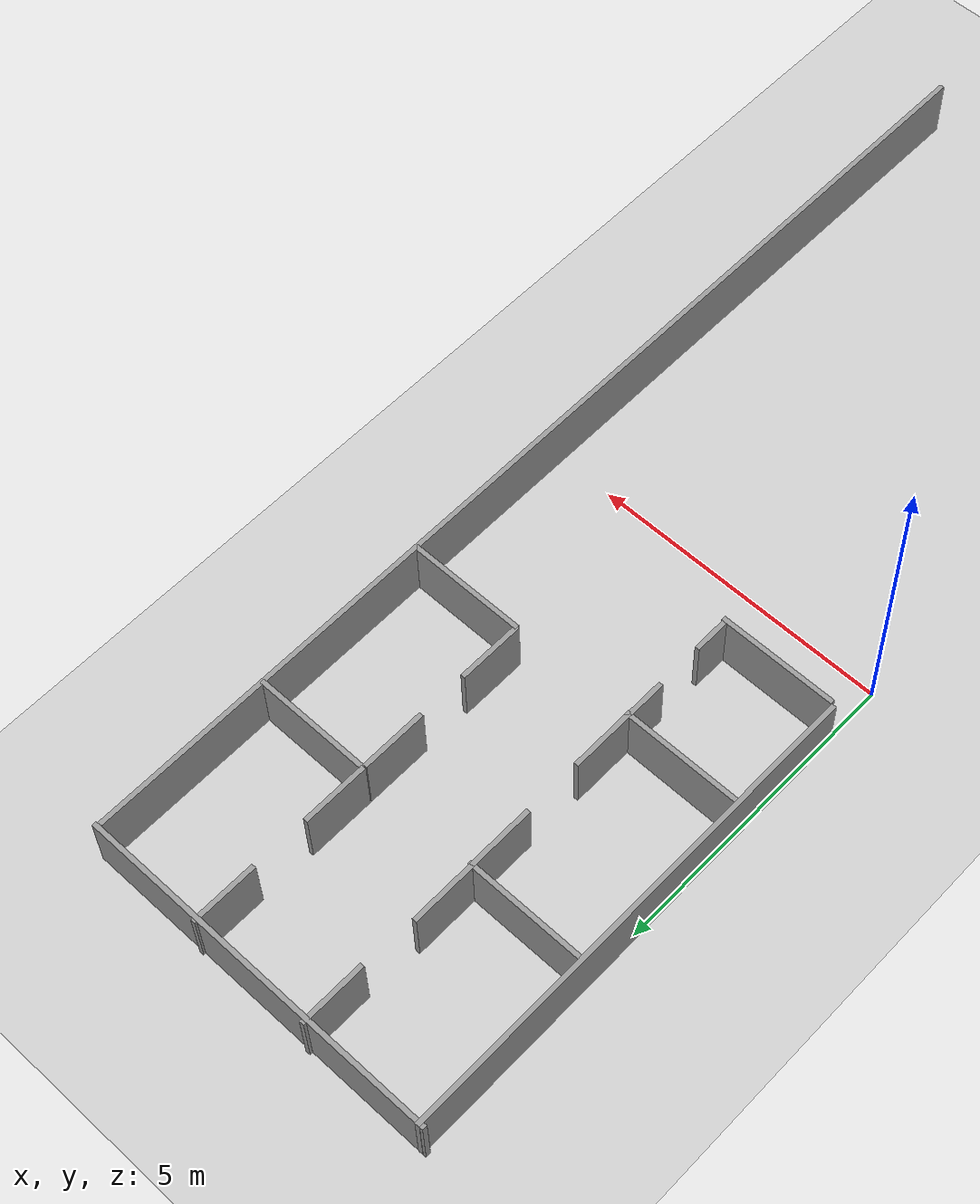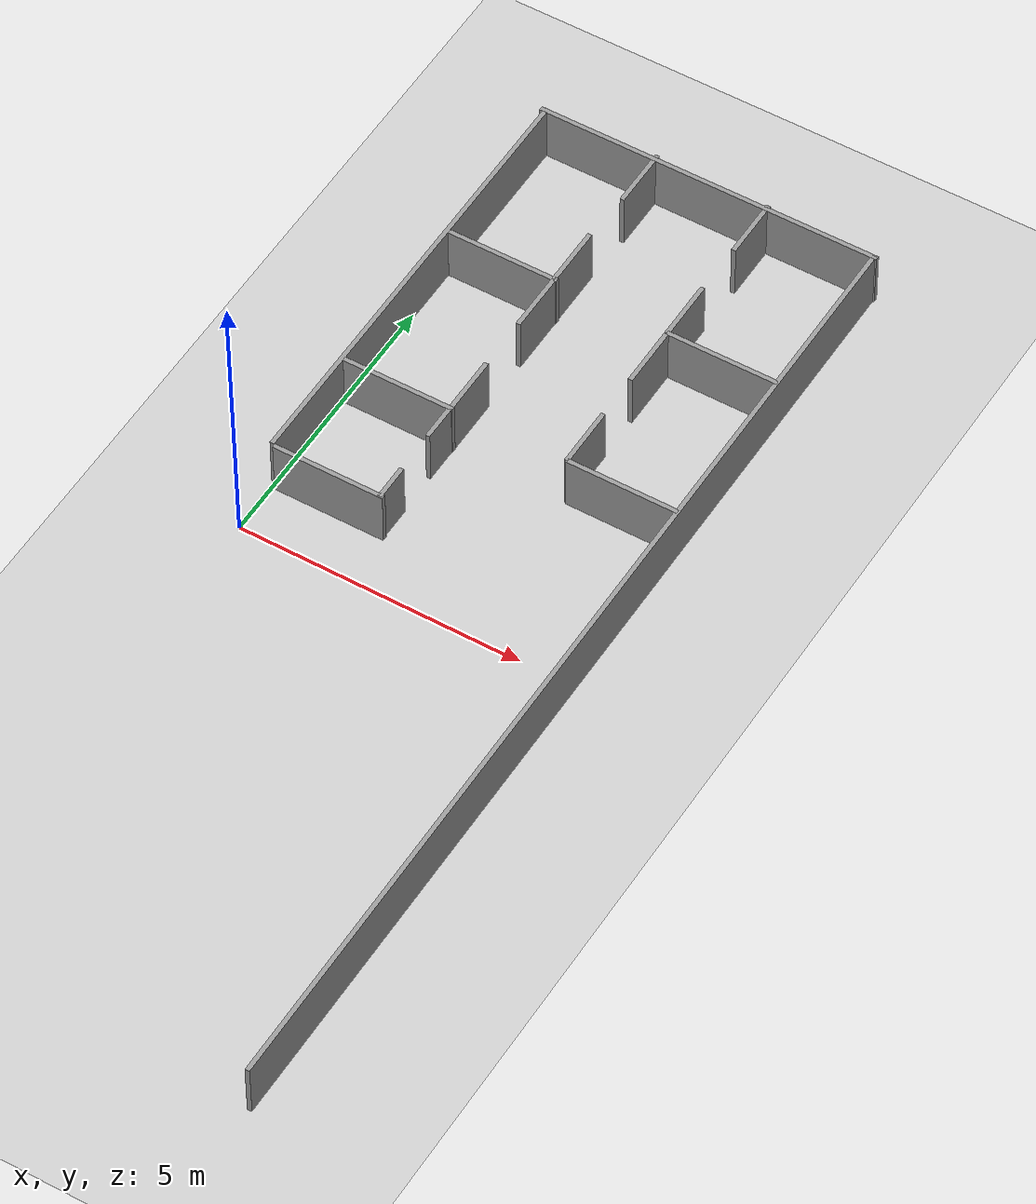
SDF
<sdf version="1.7">
 <world name="default">
  <model name="ground_plane">
   <static>1</static>
   <link name="link">
    <collision name="collision">
     <geometry><plane><normal>0 0 1</normal><size>100 100</size></plane></geometry>
     <surface><friction><ode><mu>100</mu><mu2>50</mu2></ode></friction></surface>
    </collision>
    <visual name="visual">
     <cast_shadows>0</cast_shadows>
     <geometry><plane><normal>0 0 1</normal><size>100 100</size></plane></geometry>
     <material>
      <script><uri>file://media/materials/scripts/gazebo.material</uri><name>Gazebo/Grey</name></script>
     </material>
    </visual>
   </link>
  </model>
  <model name="areaConhecida">
   <link name="link_clone">
    <inertial>
     <mass>0.638348</mass>
     <inertia><ixx>3.5065</ixx><ixy>0</ixy><ixz>0</ixz><iyy>0.0535306</iyy><iyz>0</iyz><izz>3.45364</izz></inertia>
    </inertial>
    <pose>0.365337 5.91778 0 0 -0 0</pose>
    <visual name="visual">
     <geometry><box><size>0.07935 8.05711 1</size></box></geometry>
     <material>
      <script><name>Gazebo/Grey</name><uri>file://media/materials/scripts/gazebo.material</uri></script>
      <shader type="pixel"/>
     </material>
    </visual>
    <collision name="collision">
     <geometry><box><size>0.07935 8.05711 1</size></box></geometry>
     <surface>
      <friction>
       <ode><mu>1</mu><mu2>1</mu2><fdir1>0 0 0</fdir1><slip1>0</slip1><slip2>0</slip2></ode>
       <torsional>
        <coefficient>1</coefficient>
        <patch_radius>0</patch_radius>
        <surface_radius>0</surface_radius>
        <use_patch_radius>1</use_patch_radius>
        <ode><slip>0</slip></ode>
       </torsional>
      </friction>
      <bounce><restitution_coefficient>0</restitution_coefficient><threshold>1e+06</threshold></bounce>
      <contact>
       <collide_without_contact>0</collide_without_contact>
       <collide_without_contact_bitmask>1</collide_without_contact_bitmask>
       <collide_bitmask>1</collide_bitmask>
       <ode>
        <soft_cfm>0</soft_cfm>
        <soft_erp>0.2</soft_erp>
        <kp>1e+13</kp>
        <kd>1</kd>
        <max_vel>0.01</max_vel>
        <min_depth>0</min_depth>
       </ode>
       <bullet>
        <split_impulse>1</split_impulse>
        <split_impulse_penetration_threshold>-0.01</split_impulse_penetration_threshold>
        <soft_cfm>0</soft_cfm>
        <soft_erp>0.2</soft_erp>
        <kp>1e+13</kp>
        <kd>1</kd>
       </bullet>
      </contact>
     </surface>
    </collision>
   </link>
   <link name="link_clone_0">
    <inertial>
     <mass>1.42571</mass>
     <inertia><ixx>38.5916</ixx><ixy>0</ixy><ixz>0</ixz><iyy>0.119557</iyy><iyz>0</iyz><izz>38.4736</izz></inertia>
    </inertial>
    <pose>6.32285 0.945615 -0 0 -0 0</pose>
    <visual name="visual">
     <geometry><box><size>0.07935 17.995 1</size></box></geometry>
     <material>
      <script><name>Gazebo/Grey</name><uri>file://media/materials/scripts/gazebo.material</uri></script>
      <shader type="pixel"/>
     </material>
    </visual>
    <collision name="collision">
     <geometry><box><size>0.07935 17.995 1</size></box></geometry>
     <surface>
      <friction>
       <ode><mu>1</mu><mu2>1</mu2><fdir1>0 0 0</fdir1><slip1>0</slip1><slip2>0</slip2></ode>
       <torsional>
        <coefficient>1</coefficient>
        <patch_radius>0</patch_radius>
        <surface_radius>0</surface_radius>
        <use_patch_radius>1</use_patch_radius>
        <ode><slip>0</slip></ode>
       </torsional>
      </friction>
      <bounce><restitution_coefficient>0</restitution_coefficient><threshold>1e+06</threshold></bounce>
      <contact>
       <collide_without_contact>0</collide_without_contact>
       <collide_without_contact_bitmask>1</collide_without_contact_bitmask>
       <collide_bitmask>1</collide_bitmask>
       <ode>
        <soft_cfm>0</soft_cfm>
        <soft_erp>0.2</soft_erp>
        <kp>1e+13</kp>
        <kd>1</kd>
        <max_vel>0.01</max_vel>
        <min_depth>0</min_depth>
       </ode>
       <bullet>
        <split_impulse>1</split_impulse>
        <split_impulse_penetration_threshold>-0.01</split_impulse_penetration_threshold>
        <soft_cfm>0</soft_cfm>
        <soft_erp>0.2</soft_erp>
        <kp>1e+13</kp>
        <kd>1</kd>
       </bullet>
      </contact>
     </surface>
    </collision>
   </link>
   <link name="link_clone_2">
    <inertial>
     <mass>0.484513</mass>
     <inertia>
      <ixx>1.55038</ixx>
      <ixy>0</ixy>
      <ixz>0</ixz>
      <iyy>0.0406303</iyy>
      <iyz>0</iyz>
      <izz>1.51026</izz>
     </inertia>
    </inertial>
    <pose>3.33082 9.90301 0 0 0 -1.57058</pose>
    <visual name="visual">
     <geometry><box><size>0.07935 6.11543 1</size></box></geometry>
     <material>
      <script><name>Gazebo/Grey</name><uri>file://media/materials/scripts/gazebo.material</uri></script>
      <shader type="pixel"/>
     </material>
    </visual>
    <collision name="collision">
     <geometry><box><size>0.07935 6.11543 1</size></box></geometry>
     <surface>
      <friction>
       <ode><mu>1</mu><mu2>1</mu2><fdir1>0 0 0</fdir1><slip1>0</slip1><slip2>0</slip2></ode>
       <torsional>
        <coefficient>1</coefficient>
        <patch_radius>0</patch_radius>
        <surface_radius>0</surface_radius>
        <use_patch_radius>1</use_patch_radius>
        <ode><slip>0</slip></ode>
       </torsional>
      </friction>
      <bounce><restitution_coefficient>0</restitution_coefficient><threshold>1e+06</threshold></bounce>
      <contact>
       <collide_without_contact>0</collide_without_contact>
       <collide_without_contact_bitmask>1</collide_without_contact_bitmask>
       <collide_bitmask>1</collide_bitmask>
       <ode>
        <soft_cfm>0</soft_cfm>
        <soft_erp>0.2</soft_erp>
        <kp>1e+13</kp>
        <kd>1</kd>
        <max_vel>0.01</max_vel>
        <min_depth>0</min_depth>
       </ode>
       <bullet>
        <split_impulse>1</split_impulse>
        <split_impulse_penetration_threshold>-0.01</split_impulse_penetration_threshold>
        <soft_cfm>0</soft_cfm>
        <soft_erp>0.2</soft_erp>
        <kp>1e+13</kp>
        <kd>1</kd>
       </bullet>
      </contact>
     </surface>
    </collision>
   </link>
   <link name="link_clone_2_clone">
    <inertial>
     <mass>0.155791</mass>
     <inertia>
      <ixx>0.0631807</ixx>
      <ixy>0</ixy>
      <ixz>0</ixz>
      <iyy>0.0130643</iyy>
      <iyz>0</iyz>
      <izz>0.0502798</izz>
     </inertia>
    </inertial>
    <pose>1.39856 1.86326 0 0 0 -1.57058</pose>
    <visual name="visual">
     <geometry><box><size>0.07935 1.96636 1</size></box></geometry>
     <material>
      <script><name>Gazebo/Grey</name><uri>file://media/materials/scripts/gazebo.material</uri></script>
      <shader type="pixel"/>
     </material>
    </visual>
    <collision name="collision">
     <geometry><box><size>0.07935 1.96636 1</size></box></geometry>
     <surface>
      <friction>
       <ode><mu>1</mu><mu2>1</mu2><fdir1>0 0 0</fdir1><slip1>0</slip1><slip2>0</slip2></ode>
       <torsional>
        <coefficient>1</coefficient>
        <patch_radius>0</patch_radius>
        <surface_radius>0</surface_radius>
        <use_patch_radius>1</use_patch_radius>
        <ode><slip>0</slip></ode>
       </torsional>
      </friction>
      <bounce><restitution_coefficient>0</restitution_coefficient><threshold>1e+06</threshold></bounce>
      <contact>
       <collide_without_contact>0</collide_without_contact>
       <collide_without_contact_bitmask>1</collide_without_contact_bitmask>
       <collide_bitmask>1</collide_bitmask>
       <ode>
        <soft_cfm>0</soft_cfm>
        <soft_erp>0.2</soft_erp>
        <kp>1e+13</kp>
        <kd>1</kd>
        <max_vel>0.01</max_vel>
        <min_depth>0</min_depth>
       </ode>
       <bullet>
        <split_impulse>1</split_impulse>
        <split_impulse_penetration_threshold>-0.01</split_impulse_penetration_threshold>
        <soft_cfm>0</soft_cfm>
        <soft_erp>0.2</soft_erp>
        <kp>1e+13</kp>
        <kd>1</kd>
       </bullet>
      </contact>
     </surface>
    </collision>
   </link>
   <link name="link_clone_2_clone_clone">
    <inertial>
     <mass>0.155791</mass>
     <inertia>
      <ixx>0.0631807</ixx>
      <ixy>0</ixy>
      <ixz>0</ixz>
      <iyy>0.0130643</iyy>
      <iyz>0</iyz>
      <izz>0.0502798</izz>
     </inertia>
    </inertial>
    <pose>1.38145 3.88504 0 0 0 -1.57058</pose>
    <visual name="visual">
     <geometry><box><size>0.07935 1.96636 1</size></box></geometry>
     <material>
      <script><name>Gazebo/Grey</name><uri>file://media/materials/scripts/gazebo.material</uri></script>
      <shader type="pixel"/>
     </material>
    </visual>
    <collision name="collision">
     <geometry><box><size>0.07935 1.96636 1</size></box></geometry>
     <surface>
      <friction>
       <ode><mu>1</mu><mu2>1</mu2><fdir1>0 0 0</fdir1><slip1>0</slip1><slip2>0</slip2></ode>
       <torsional>
        <coefficient>1</coefficient>
        <patch_radius>0</patch_radius>
        <surface_radius>0</surface_radius>
        <use_patch_radius>1</use_patch_radius>
        <ode><slip>0</slip></ode>
       </torsional>
      </friction>
      <bounce><restitution_coefficient>0</restitution_coefficient><threshold>1e+06</threshold></bounce>
      <contact>
       <collide_without_contact>0</collide_without_contact>
       <collide_without_contact_bitmask>1</collide_without_contact_bitmask>
       <collide_bitmask>1</collide_bitmask>
       <ode>
        <soft_cfm>0</soft_cfm>
        <soft_erp>0.2</soft_erp>
        <kp>1e+13</kp>
        <kd>1</kd>
        <max_vel>0.01</max_vel>
        <min_depth>0</min_depth>
       </ode>
       <bullet>
        <split_impulse>1</split_impulse>
        <split_impulse_penetration_threshold>-0.01</split_impulse_penetration_threshold>
        <soft_cfm>0</soft_cfm>
        <soft_erp>0.2</soft_erp>
        <kp>1e+13</kp>
        <kd>1</kd>
       </bullet>
      </contact>
     </surface>
    </collision>
   </link>
   <link name="link_clone_2_clone_clone_0">
    <inertial>
     <mass>0.155791</mass>
     <inertia>
      <ixx>0.0631807</ixx>
      <ixy>0</ixy>
      <ixz>0</ixz>
      <iyy>0.0130643</iyy>
      <iyz>0</iyz>
      <izz>0.0502798</izz>
     </inertia>
    </inertial>
    <pose>1.38654 6.94171 0 0 0 -1.57058</pose>
    <visual name="visual">
     <geometry><box><size>0.07935 1.96636 1</size></box></geometry>
     <material>
      <script><name>Gazebo/Grey</name><uri>file://media/materials/scripts/gazebo.material</uri></script>
      <shader type="pixel"/>
     </material>
    </visual>
    <collision name="collision">
     <geometry><box><size>0.07935 1.96636 1</size></box></geometry>
     <surface>
      <friction>
       <ode><mu>1</mu><mu2>1</mu2><fdir1>0 0 0</fdir1><slip1>0</slip1><slip2>0</slip2></ode>
       <torsional>
        <coefficient>1</coefficient>
        <patch_radius>0</patch_radius>
        <surface_radius>0</surface_radius>
        <use_patch_radius>1</use_patch_radius>
        <ode><slip>0</slip></ode>
       </torsional>
      </friction>
      <bounce><restitution_coefficient>0</restitution_coefficient><threshold>1e+06</threshold></bounce>
      <contact>
       <collide_without_contact>0</collide_without_contact>
       <collide_without_contact_bitmask>1</collide_without_contact_bitmask>
       <collide_bitmask>1</collide_bitmask>
       <ode>
        <soft_cfm>0</soft_cfm>
        <soft_erp>0.2</soft_erp>
        <kp>1e+13</kp>
        <kd>1</kd>
        <max_vel>0.01</max_vel>
        <min_depth>0</min_depth>
       </ode>
       <bullet>
        <split_impulse>1</split_impulse>
        <split_impulse_penetration_threshold>-0.01</split_impulse_penetration_threshold>
        <soft_cfm>0</soft_cfm>
        <soft_erp>0.2</soft_erp>
        <kp>1e+13</kp>
        <kd>1</kd>
       </bullet>
      </contact>
     </surface>
    </collision>
   </link>
   <link name="link_clone_2_clone_clone_6">
    <inertial>
     <mass>0.155791</mass>
     <inertia>
      <ixx>0.0631807</ixx>
      <ixy>0</ixy>
      <ixz>0</ixz>
      <iyy>0.0130643</iyy>
      <iyz>0</iyz>
      <izz>0.0502798</izz>
     </inertia>
    </inertial>
    <pose>5.35105 3.91947 0 0 0 -1.57058</pose>
    <visual name="visual">
     <geometry><box><size>0.07935 1.96636 1</size></box></geometry>
     <material>
      <script><name>Gazebo/Grey</name><uri>file://media/materials/scripts/gazebo.material</uri></script>
      <shader type="pixel"/>
     </material>
    </visual>
    <collision name="collision">
     <geometry><box><size>0.07935 1.96636 1</size></box></geometry>
     <surface>
      <friction>
       <ode><mu>1</mu><mu2>1</mu2><fdir1>0 0 0</fdir1><slip1>0</slip1><slip2>0</slip2></ode>
       <torsional>
        <coefficient>1</coefficient>
        <patch_radius>0</patch_radius>
        <surface_radius>0</surface_radius>
        <use_patch_radius>1</use_patch_radius>
        <ode><slip>0</slip></ode>
       </torsional>
      </friction>
      <bounce><restitution_coefficient>0</restitution_coefficient><threshold>1e+06</threshold></bounce>
      <contact>
       <collide_without_contact>0</collide_without_contact>
       <collide_without_contact_bitmask>1</collide_without_contact_bitmask>
       <collide_bitmask>1</collide_bitmask>
       <ode>
        <soft_cfm>0</soft_cfm>
        <soft_erp>0.2</soft_erp>
        <kp>1e+13</kp>
        <kd>1</kd>
        <max_vel>0.01</max_vel>
        <min_depth>0</min_depth>
       </ode>
       <bullet>
        <split_impulse>1</split_impulse>
        <split_impulse_penetration_threshold>-0.01</split_impulse_penetration_threshold>
        <soft_cfm>0</soft_cfm>
        <soft_erp>0.2</soft_erp>
        <kp>1e+13</kp>
        <kd>1</kd>
       </bullet>
      </contact>
     </surface>
    </collision>
   </link>
   <link name="link_clone_2_clone_clone_7">
    <inertial>
     <mass>0.155791</mass>
     <inertia>
      <ixx>0.0631807</ixx>
      <ixy>0</ixy>
      <ixz>0</ixz>
      <iyy>0.0130643</iyy>
      <iyz>0</iyz>
      <izz>0.0502798</izz>
     </inertia>
    </inertial>
    <pose>5.35163 6.9056 0 0 0 -1.57058</pose>
    <visual name="visual">
     <geometry><box><size>0.07935 1.96636 1</size></box></geometry>
     <material>
      <script><name>Gazebo/Grey</name><uri>file://media/materials/scripts/gazebo.material</uri></script>
      <shader type="pixel"/>
     </material>
    </visual>
    <collision name="collision">
     <geometry><box><size>0.07935 1.96636 1</size></box></geometry>
     <surface>
      <friction>
       <ode><mu>1</mu><mu2>1</mu2><fdir1>0 0 0</fdir1><slip1>0</slip1><slip2>0</slip2></ode>
       <torsional>
        <coefficient>1</coefficient>
        <patch_radius>0</patch_radius>
        <surface_radius>0</surface_radius>
        <use_patch_radius>1</use_patch_radius>
        <ode><slip>0</slip></ode>
       </torsional>
      </friction>
      <bounce><restitution_coefficient>0</restitution_coefficient><threshold>1e+06</threshold></bounce>
      <contact>
       <collide_without_contact>0</collide_without_contact>
       <collide_without_contact_bitmask>1</collide_without_contact_bitmask>
       <collide_bitmask>1</collide_bitmask>
       <ode>
        <soft_cfm>0</soft_cfm>
        <soft_erp>0.2</soft_erp>
        <kp>1e+13</kp>
        <kd>1</kd>
        <max_vel>0.01</max_vel>
        <min_depth>0</min_depth>
       </ode>
       <bullet>
        <split_impulse>1</split_impulse>
        <split_impulse_penetration_threshold>-0.01</split_impulse_penetration_threshold>
        <soft_cfm>0</soft_cfm>
        <soft_erp>0.2</soft_erp>
        <kp>1e+13</kp>
        <kd>1</kd>
       </bullet>
      </contact>
     </surface>
    </collision>
   </link>
   <link name="link_clone_3_clone_10">
    <inertial>
     <mass>0.085982</mass>
     <inertia>
      <ixx>0.015604</ixx>
      <ixy>0</ixy>
      <ixz>0</ixz>
      <iyy>0.00721028</iyy>
      <iyz>0</iyz>
      <izz>0.00848394</izz>
     </inertia>
    </inertial>
    <pose>2.31379 7.48044 0 0 -0 0</pose>
    <visual name="visual">
     <geometry><box><size>0.07935 1.08525 1</size></box></geometry>
     <material>
      <script><name>Gazebo/Grey</name><uri>file://media/materials/scripts/gazebo.material</uri></script>
      <shader type="pixel"/>
     </material>
    </visual>
    <collision name="collision">
     <geometry><box><size>0.07935 1.08525 1</size></box></geometry>
     <surface>
      <friction>
       <ode><mu>1</mu><mu2>1</mu2><fdir1>0 0 0</fdir1><slip1>0</slip1><slip2>0</slip2></ode>
       <torsional>
        <coefficient>1</coefficient>
        <patch_radius>0</patch_radius>
        <surface_radius>0</surface_radius>
        <use_patch_radius>1</use_patch_radius>
        <ode><slip>0</slip></ode>
       </torsional>
      </friction>
      <bounce><restitution_coefficient>0</restitution_coefficient><threshold>1e+06</threshold></bounce>
      <contact>
       <collide_without_contact>0</collide_without_contact>
       <collide_without_contact_bitmask>1</collide_without_contact_bitmask>
       <collide_bitmask>1</collide_bitmask>
       <ode>
        <soft_cfm>0</soft_cfm>
        <soft_erp>0.2</soft_erp>
        <kp>1e+13</kp>
        <kd>1</kd>
        <max_vel>0.01</max_vel>
        <min_depth>0</min_depth>
       </ode>
       <bullet>
        <split_impulse>1</split_impulse>
        <split_impulse_penetration_threshold>-0.01</split_impulse_penetration_threshold>
        <soft_cfm>0</soft_cfm>
        <soft_erp>0.2</soft_erp>
        <kp>1e+13</kp>
        <kd>1</kd>
       </bullet>
      </contact>
     </surface>
    </collision>
   </link>
   <link name="link_clone_3_clone_11">
    <inertial>
     <mass>0.085982</mass>
     <inertia>
      <ixx>0.015604</ixx>
      <ixy>0</ixy>
      <ixz>0</ixz>
      <iyy>0.00721028</iyy>
      <iyz>0</iyz>
      <izz>0.00848394</izz>
     </inertia>
    </inertial>
    <pose>2.36574 9.44644 0 0 -0 0</pose>
    <visual name="visual">
     <geometry><box><size>0.07935 1.08525 1</size></box></geometry>
     <material>
      <script><name>Gazebo/Grey</name><uri>file://media/materials/scripts/gazebo.material</uri></script>
      <shader type="pixel"/>
     </material>
    </visual>
    <collision name="collision">
     <geometry><box><size>0.07935 1.08525 1</size></box></geometry>
     <surface>
      <friction>
       <ode><mu>1</mu><mu2>1</mu2><fdir1>0 0 0</fdir1><slip1>0</slip1><slip2>0</slip2></ode>
       <torsional>
        <coefficient>1</coefficient>
        <patch_radius>0</patch_radius>
        <surface_radius>0</surface_radius>
        <use_patch_radius>1</use_patch_radius>
        <ode><slip>0</slip></ode>
       </torsional>
      </friction>
      <bounce><restitution_coefficient>0</restitution_coefficient><threshold>1e+06</threshold></bounce>
      <contact>
       <collide_without_contact>0</collide_without_contact>
       <collide_without_contact_bitmask>1</collide_without_contact_bitmask>
       <collide_bitmask>1</collide_bitmask>
       <ode>
        <soft_cfm>0</soft_cfm>
        <soft_erp>0.2</soft_erp>
        <kp>1e+13</kp>
        <kd>1</kd>
        <max_vel>0.01</max_vel>
        <min_depth>0</min_depth>
       </ode>
       <bullet>
        <split_impulse>1</split_impulse>
        <split_impulse_penetration_threshold>-0.01</split_impulse_penetration_threshold>
        <soft_cfm>0</soft_cfm>
        <soft_erp>0.2</soft_erp>
        <kp>1e+13</kp>
        <kd>1</kd>
       </bullet>
      </contact>
     </surface>
    </collision>
   </link>
   <link name="link_clone_3_clone_12">
    <inertial>
     <mass>0.085982</mass>
     <inertia>
      <ixx>0.015604</ixx>
      <ixy>0</ixy>
      <ixz>0</ixz>
      <iyy>0.00721028</iyy>
      <iyz>0</iyz>
      <izz>0.00848394</izz>
     </inertia>
    </inertial>
    <pose>4.37495 7.43753 0 0 -0 0</pose>
    <visual name="visual">
     <geometry><box><size>0.07935 1.08525 1</size></box></geometry>
     <material>
      <script><name>Gazebo/Grey</name><uri>file://media/materials/scripts/gazebo.material</uri></script>
      <shader type="pixel"/>
     </material>
    </visual>
    <collision name="collision">
     <geometry><box><size>0.07935 1.08525 1</size></box></geometry>
     <surface>
      <friction>
       <ode><mu>1</mu><mu2>1</mu2><fdir1>0 0 0</fdir1><slip1>0</slip1><slip2>0</slip2></ode>
       <torsional>
        <coefficient>1</coefficient>
        <patch_radius>0</patch_radius>
        <surface_radius>0</surface_radius>
        <use_patch_radius>1</use_patch_radius>
        <ode><slip>0</slip></ode>
       </torsional>
      </friction>
      <bounce><restitution_coefficient>0</restitution_coefficient><threshold>1e+06</threshold></bounce>
      <contact>
       <collide_without_contact>0</collide_without_contact>
       <collide_without_contact_bitmask>1</collide_without_contact_bitmask>
       <collide_bitmask>1</collide_bitmask>
       <ode>
        <soft_cfm>0</soft_cfm>
        <soft_erp>0.2</soft_erp>
        <kp>1e+13</kp>
        <kd>1</kd>
        <max_vel>0.01</max_vel>
        <min_depth>0</min_depth>
       </ode>
       <bullet>
        <split_impulse>1</split_impulse>
        <split_impulse_penetration_threshold>-0.01</split_impulse_penetration_threshold>
        <soft_cfm>0</soft_cfm>
        <soft_erp>0.2</soft_erp>
        <kp>1e+13</kp>
        <kd>1</kd>
       </bullet>
      </contact>
     </surface>
    </collision>
   </link>
   <link name="link_clone_3_clone_13">
    <inertial>
     <mass>0.085982</mass>
     <inertia>
      <ixx>0.015604</ixx>
      <ixy>0</ixy>
      <ixz>0</ixz>
      <iyy>0.00721028</iyy>
      <iyz>0</iyz>
      <izz>0.00848394</izz>
     </inertia>
    </inertial>
    <pose>4.3917 9.43454 0 0 -0 0</pose>
    <visual name="visual">
     <geometry><box><size>0.07935 1.08525 1</size></box></geometry>
     <material>
      <script><name>Gazebo/Grey</name><uri>file://media/materials/scripts/gazebo.material</uri></script>
      <shader type="pixel"/>
     </material>
    </visual>
    <collision name="collision">
     <geometry><box><size>0.07935 1.08525 1</size></box></geometry>
     <surface>
      <friction>
       <ode><mu>1</mu><mu2>1</mu2><fdir1>0 0 0</fdir1><slip1>0</slip1><slip2>0</slip2></ode>
       <torsional>
        <coefficient>1</coefficient>
        <patch_radius>0</patch_radius>
        <surface_radius>0</surface_radius>
        <use_patch_radius>1</use_patch_radius>
        <ode><slip>0</slip></ode>
       </torsional>
      </friction>
      <bounce><restitution_coefficient>0</restitution_coefficient><threshold>1e+06</threshold></bounce>
      <contact>
       <collide_without_contact>0</collide_without_contact>
       <collide_without_contact_bitmask>1</collide_without_contact_bitmask>
       <collide_bitmask>1</collide_bitmask>
       <ode>
        <soft_cfm>0</soft_cfm>
        <soft_erp>0.2</soft_erp>
        <kp>1e+13</kp>
        <kd>1</kd>
        <max_vel>0.01</max_vel>
        <min_depth>0</min_depth>
       </ode>
       <bullet>
        <split_impulse>1</split_impulse>
        <split_impulse_penetration_threshold>-0.01</split_impulse_penetration_threshold>
        <soft_cfm>0</soft_cfm>
        <soft_erp>0.2</soft_erp>
        <kp>1e+13</kp>
        <kd>1</kd>
       </bullet>
      </contact>
     </surface>
    </collision>
   </link>
   <link name="link_clone_3_clone_14_clone_0">
    <inertial>
     <mass>0.0502465</mass>
     <inertia>
      <ixx>0.00587136</ixx>
      <ixy>0</ixy>
      <ixz>0</ixz>
      <iyy>0.00421357</iyy>
      <iyz>0</iyz>
      <izz>0.00171051</izz>
     </inertia>
    </inertial>
    <pose>2.32092 2.16481 0 0 -0 0</pose>
    <visual name="visual">
     <geometry><box><size>0.07935 0.634202 1</size></box></geometry>
     <material>
      <script><name>Gazebo/Grey</name><uri>file://media/materials/scripts/gazebo.material</uri></script>
      <shader type="pixel"/>
     </material>
    </visual>
    <collision name="collision">
     <geometry><box><size>0.07935 0.634202 1</size></box></geometry>
     <surface>
      <friction>
       <ode><mu>1</mu><mu2>1</mu2><fdir1>0 0 0</fdir1><slip1>0</slip1><slip2>0</slip2></ode>
       <torsional>
        <coefficient>1</coefficient>
        <patch_radius>0</patch_radius>
        <surface_radius>0</surface_radius>
        <use_patch_radius>1</use_patch_radius>
        <ode><slip>0</slip></ode>
       </torsional>
      </friction>
      <bounce><restitution_coefficient>0</restitution_coefficient><threshold>1e+06</threshold></bounce>
      <contact>
       <collide_without_contact>0</collide_without_contact>
       <collide_without_contact_bitmask>1</collide_without_contact_bitmask>
       <collide_bitmask>1</collide_bitmask>
       <ode>
        <soft_cfm>0</soft_cfm>
        <soft_erp>0.2</soft_erp>
        <kp>1e+13</kp>
        <kd>1</kd>
        <max_vel>0.01</max_vel>
        <min_depth>0</min_depth>
       </ode>
       <bullet>
        <split_impulse>1</split_impulse>
        <split_impulse_penetration_threshold>-0.01</split_impulse_penetration_threshold>
        <soft_cfm>0</soft_cfm>
        <soft_erp>0.2</soft_erp>
        <kp>1e+13</kp>
        <kd>1</kd>
       </bullet>
      </contact>
     </surface>
    </collision>
   </link>
   <link name="link_clone_3_clone_14_clone_1">
    <inertial>
     <mass>0.0502465</mass>
     <inertia>
      <ixx>0.00587136</ixx>
      <ixy>0</ixy>
      <ixz>0</ixz>
      <iyy>0.00421357</iyy>
      <iyz>0</iyz>
      <izz>0.00171051</izz>
     </inertia>
    </inertial>
    <pose>2.31341 3.54987 0 0 -0 0</pose>
    <visual name="visual">
     <geometry><box><size>0.07935 0.634202 1</size></box></geometry>
     <material>
      <script><name>Gazebo/Grey</name><uri>file://media/materials/scripts/gazebo.material</uri></script>
      <shader type="pixel"/>
     </material>
    </visual>
    <collision name="collision">
     <geometry><box><size>0.07935 0.634202 1</size></box></geometry>
     <surface>
      <friction>
       <ode><mu>1</mu><mu2>1</mu2><fdir1>0 0 0</fdir1><slip1>0</slip1><slip2>0</slip2></ode>
       <torsional>
        <coefficient>1</coefficient>
        <patch_radius>0</patch_radius>
        <surface_radius>0</surface_radius>
        <use_patch_radius>1</use_patch_radius>
        <ode><slip>0</slip></ode>
       </torsional>
      </friction>
      <bounce><restitution_coefficient>0</restitution_coefficient><threshold>1e+06</threshold></bounce>
      <contact>
       <collide_without_contact>0</collide_without_contact>
       <collide_without_contact_bitmask>1</collide_without_contact_bitmask>
       <collide_bitmask>1</collide_bitmask>
       <ode>
        <soft_cfm>0</soft_cfm>
        <soft_erp>0.2</soft_erp>
        <kp>1e+13</kp>
        <kd>1</kd>
        <max_vel>0.01</max_vel>
        <min_depth>0</min_depth>
       </ode>
       <bullet>
        <split_impulse>1</split_impulse>
        <split_impulse_penetration_threshold>-0.01</split_impulse_penetration_threshold>
        <soft_cfm>0</soft_cfm>
        <soft_erp>0.2</soft_erp>
        <kp>1e+13</kp>
        <kd>1</kd>
       </bullet>
      </contact>
     </surface>
    </collision>
   </link>
   <link name="link_clone_3_clone_6">
    <inertial>
     <mass>0.085982</mass>
     <inertia>
      <ixx>0.015604</ixx>
      <ixy>0</ixy>
      <ixz>0</ixz>
      <iyy>0.00721028</iyy>
      <iyz>0</iyz>
      <izz>0.00848394</izz>
     </inertia>
    </inertial>
    <pose>2.31924 4.3971 0 0 -0 0</pose>
    <visual name="visual">
     <geometry><box><size>0.07935 1.08525 1</size></box></geometry>
     <material>
      <script><name>Gazebo/Grey</name><uri>file://media/materials/scripts/gazebo.material</uri></script>
      <shader type="pixel"/>
     </material>
    </visual>
    <collision name="collision">
     <geometry><box><size>0.07935 1.08525 1</size></box></geometry>
     <surface>
      <friction>
       <ode><mu>1</mu><mu2>1</mu2><fdir1>0 0 0</fdir1><slip1>0</slip1><slip2>0</slip2></ode>
       <torsional>
        <coefficient>1</coefficient>
        <patch_radius>0</patch_radius>
        <surface_radius>0</surface_radius>
        <use_patch_radius>1</use_patch_radius>
        <ode><slip>0</slip></ode>
       </torsional>
      </friction>
      <bounce><restitution_coefficient>0</restitution_coefficient><threshold>1e+06</threshold></bounce>
      <contact>
       <collide_without_contact>0</collide_without_contact>
       <collide_without_contact_bitmask>1</collide_without_contact_bitmask>
       <collide_bitmask>1</collide_bitmask>
       <ode>
        <soft_cfm>0</soft_cfm>
        <soft_erp>0.2</soft_erp>
        <kp>1e+13</kp>
        <kd>1</kd>
        <max_vel>0.01</max_vel>
        <min_depth>0</min_depth>
       </ode>
       <bullet>
        <split_impulse>1</split_impulse>
        <split_impulse_penetration_threshold>-0.01</split_impulse_penetration_threshold>
        <soft_cfm>0</soft_cfm>
        <soft_erp>0.2</soft_erp>
        <kp>1e+13</kp>
        <kd>1</kd>
       </bullet>
      </contact>
     </surface>
    </collision>
   </link>
   <link name="link_clone_3_clone_7">
    <inertial>
     <mass>0.085982</mass>
     <inertia>
      <ixx>0.015604</ixx>
      <ixy>0</ixy>
      <ixz>0</ixz>
      <iyy>0.00721028</iyy>
      <iyz>0</iyz>
      <izz>0.00848394</izz>
     </inertia>
    </inertial>
    <pose>2.318 6.41011 0 0 -0 0</pose>
    <visual name="visual">
     <geometry><box><size>0.07935 1.08525 1</size></box></geometry>
     <material>
      <script><name>Gazebo/Grey</name><uri>file://media/materials/scripts/gazebo.material</uri></script>
      <shader type="pixel"/>
     </material>
    </visual>
    <collision name="collision">
     <geometry><box><size>0.07935 1.08525 1</size></box></geometry>
     <surface>
      <friction>
       <ode><mu>1</mu><mu2>1</mu2><fdir1>0 0 0</fdir1><slip1>0</slip1><slip2>0</slip2></ode>
       <torsional>
        <coefficient>1</coefficient>
        <patch_radius>0</patch_radius>
        <surface_radius>0</surface_radius>
        <use_patch_radius>1</use_patch_radius>
        <ode><slip>0</slip></ode>
       </torsional>
      </friction>
      <bounce><restitution_coefficient>0</restitution_coefficient><threshold>1e+06</threshold></bounce>
      <contact>
       <collide_without_contact>0</collide_without_contact>
       <collide_without_contact_bitmask>1</collide_without_contact_bitmask>
       <collide_bitmask>1</collide_bitmask>
       <ode>
        <soft_cfm>0</soft_cfm>
        <soft_erp>0.2</soft_erp>
        <kp>1e+13</kp>
        <kd>1</kd>
        <max_vel>0.01</max_vel>
        <min_depth>0</min_depth>
       </ode>
       <bullet>
        <split_impulse>1</split_impulse>
        <split_impulse_penetration_threshold>-0.01</split_impulse_penetration_threshold>
        <soft_cfm>0</soft_cfm>
        <soft_erp>0.2</soft_erp>
        <kp>1e+13</kp>
        <kd>1</kd>
       </bullet>
      </contact>
     </surface>
    </collision>
   </link>
   <link name="link_clone_3_clone_8">
    <inertial>
     <mass>0.085982</mass>
     <inertia>
      <ixx>0.015604</ixx>
      <ixy>0</ixy>
      <ixz>0</ixz>
      <iyy>0.00721028</iyy>
      <iyz>0</iyz>
      <izz>0.00848394</izz>
     </inertia>
    </inertial>
    <pose>4.37441 4.45132 0 0 -0 0</pose>
    <visual name="visual">
     <geometry><box><size>0.07935 1.08525 1</size></box></geometry>
     <material>
      <script><name>Gazebo/Grey</name><uri>file://media/materials/scripts/gazebo.material</uri></script>
      <shader type="pixel"/>
     </material>
    </visual>
    <collision name="collision">
     <geometry><box><size>0.07935 1.08525 1</size></box></geometry>
     <surface>
      <friction>
       <ode><mu>1</mu><mu2>1</mu2><fdir1>0 0 0</fdir1><slip1>0</slip1><slip2>0</slip2></ode>
       <torsional>
        <coefficient>1</coefficient>
        <patch_radius>0</patch_radius>
        <surface_radius>0</surface_radius>
        <use_patch_radius>1</use_patch_radius>
        <ode><slip>0</slip></ode>
       </torsional>
      </friction>
      <bounce><restitution_coefficient>0</restitution_coefficient><threshold>1e+06</threshold></bounce>
      <contact>
       <collide_without_contact>0</collide_without_contact>
       <collide_without_contact_bitmask>1</collide_without_contact_bitmask>
       <collide_bitmask>1</collide_bitmask>
       <ode>
        <soft_cfm>0</soft_cfm>
        <soft_erp>0.2</soft_erp>
        <kp>1e+13</kp>
        <kd>1</kd>
        <max_vel>0.01</max_vel>
        <min_depth>0</min_depth>
       </ode>
       <bullet>
        <split_impulse>1</split_impulse>
        <split_impulse_penetration_threshold>-0.01</split_impulse_penetration_threshold>
        <soft_cfm>0</soft_cfm>
        <soft_erp>0.2</soft_erp>
        <kp>1e+13</kp>
        <kd>1</kd>
       </bullet>
      </contact>
     </surface>
    </collision>
   </link>
   <link name="link_clone_3_clone_9">
    <inertial>
     <mass>0.085982</mass>
     <inertia>
      <ixx>0.015604</ixx>
      <ixy>0</ixy>
      <ixz>0</ixz>
      <iyy>0.00721028</iyy>
      <iyz>0</iyz>
      <izz>0.00848394</izz>
     </inertia>
    </inertial>
    <pose>4.37534 6.33511 0 0 -0 0</pose>
    <visual name="visual">
     <geometry><box><size>0.07935 1.08525 1</size></box></geometry>
     <material>
      <script><name>Gazebo/Grey</name><uri>file://media/materials/scripts/gazebo.material</uri></script>
      <shader type="pixel"/>
     </material>
    </visual>
    <collision name="collision">
     <geometry><box><size>0.07935 1.08525 1</size></box></geometry>
     <surface>
      <friction>
       <ode><mu>1</mu><mu2>1</mu2><fdir1>0 0 0</fdir1><slip1>0</slip1><slip2>0</slip2></ode>
       <torsional>
        <coefficient>1</coefficient>
        <patch_radius>0</patch_radius>
        <surface_radius>0</surface_radius>
        <use_patch_radius>1</use_patch_radius>
        <ode><slip>0</slip></ode>
       </torsional>
      </friction>
      <bounce><restitution_coefficient>0</restitution_coefficient><threshold>1e+06</threshold></bounce>
      <contact>
       <collide_without_contact>0</collide_without_contact>
       <collide_without_contact_bitmask>1</collide_without_contact_bitmask>
       <collide_bitmask>1</collide_bitmask>
       <ode>
        <soft_cfm>0</soft_cfm>
        <soft_erp>0.2</soft_erp>
        <kp>1e+13</kp>
        <kd>1</kd>
        <max_vel>0.01</max_vel>
        <min_depth>0</min_depth>
       </ode>
       <bullet>
        <split_impulse>1</split_impulse>
        <split_impulse_penetration_threshold>-0.01</split_impulse_penetration_threshold>
        <soft_cfm>0</soft_cfm>
        <soft_erp>0.2</soft_erp>
        <kp>1e+13</kp>
        <kd>1</kd>
       </bullet>
      </contact>
     </surface>
    </collision>
   </link>
   <static>0</static>
   <pose>-0.371049 -0.908163 0.5 0 -0 0</pose>
  </model>
 </world>
</sdf>
